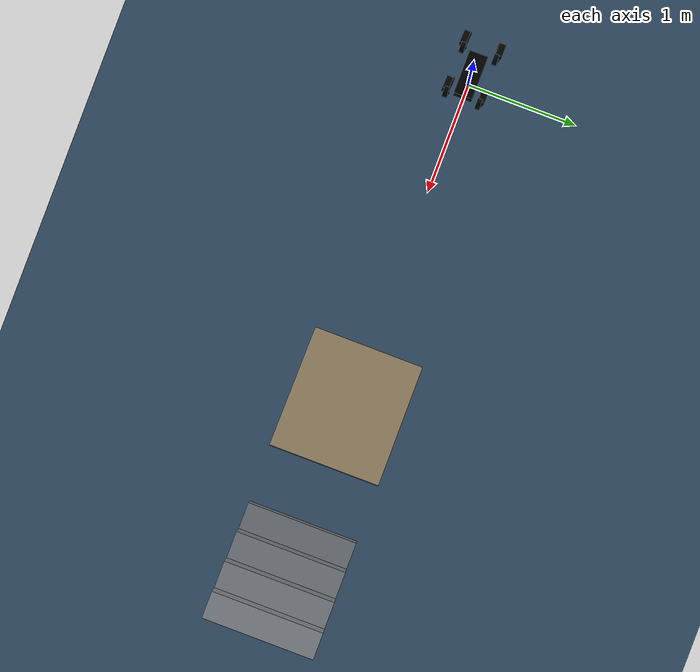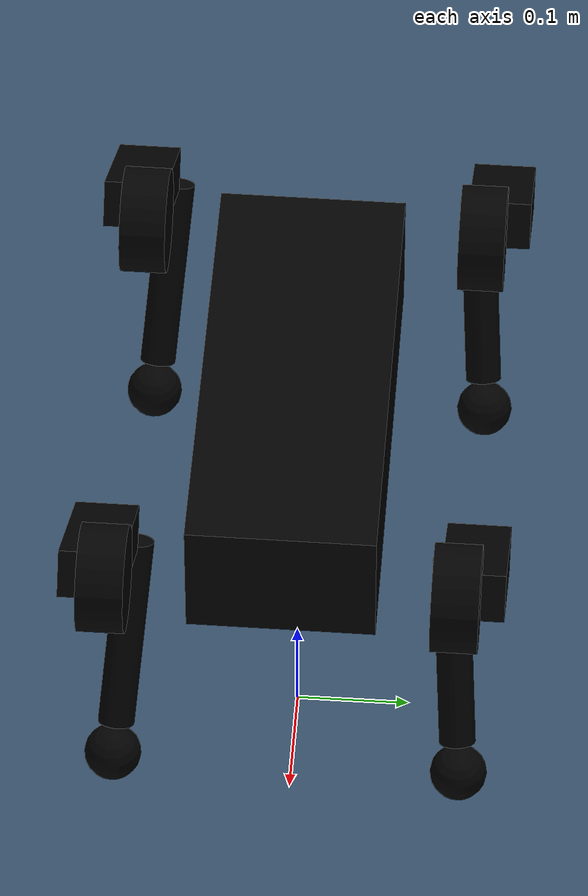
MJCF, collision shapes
<mujoco model="dog_v2_2_4">
  <compiler angle="radian" autolimits="true" eulerseq="zyx" meshdir="meshes" />
  <option gravity="0 0 -9.81">
    <flag frictionloss="enable" />
  </option>
  <size njmax="500" nconmax="100" />
  <default>
    <joint limited="true" />
    <motor ctrllimited="true" />
    <geom condim="1" contype="1" conaffinity="0" friction="0.6 0.2 0.2" />
    <default class="leg_joint_param">
      <joint damping="0.5" frictionloss="0.01" armature="0.01" />
    </default>
    <default class="foot_collision">
      <geom type="sphere" size="0.02" condim="6" friction="10.0 0.05 0.01" />
    </default>
  </default>
  <asset>
    <hfield name="terrain" nrow="100" ncol="100" size="50 50 0.5 0.1" />
    <mesh name="base_link" file="base_link.STL" />
    <mesh name="LF_HipA_link" file="LF_HipA_link.STL" />
    <mesh name="LF_HipF_link" file="LF_HipF_link.STL" />
    <mesh name="LF_Knee_link" file="LF_Knee_link.STL" />
    <mesh name="LF_Foot_link" file="LF_Foot_link.STL" />
    <mesh name="RF_HipA_link" file="RF_HipA_link.STL" />
    <mesh name="RF_HipF_link" file="RF_HipF_link.STL" />
    <mesh name="RF_Knee_link" file="RF_Knee_link.STL" />
    <mesh name="RF_Foot_link" file="RF_Foot_link.STL" />
    <mesh name="LR_HipA_link" file="LR_HipA_link.STL" />
    <mesh name="LR_HipF_link" file="LR_HipF_link.STL" />
    <mesh name="LR_Knee_link" file="LR_Knee_link.STL" />
    <mesh name="LR_Foot_link" file="LR_Foot_link.STL" />
    <mesh name="RR_HipA_link" file="RR_HipA_link.STL" />
    <mesh name="RR_HipF_link" file="RR_HipF_link.STL" />
    <mesh name="RR_Knee_link" file="RR_Knee_link.STL" />
    <mesh name="RR_Foot_link" file="RR_Foot_link.STL" />
  </asset>
  <worldbody>
    <light directional="true" diffuse=".4 .4 .4" pos="0 0 5.0" dir="0 0 -1" />
    <geom name="floor" type="plane" size="50 50 0.1" condim="3" friction="1.0 0.2 0.2" conaffinity="1" rgba="0.2 0.3 0.4 1" />
    <geom name="test_ramp" type="box" pos="3.00 0 0.09" size="0.55 0.5 0.035" quat="0.996195 0 -0.087156 0" condim="3" friction="1.0 0.2 0.2" contype="1" conaffinity="1" rgba="0.55 0.48 0.36 1" />
    <geom name="test_step_1" type="box" pos="4.20 0 0.06" size="0.12 0.5 0.06" condim="3" friction="1.0 0.2 0.2" contype="1" conaffinity="1" rgba="0.42 0.44 0.46 1" />
    <geom name="test_step_2" type="box" pos="4.45 0 0.12" size="0.12 0.5 0.12" condim="3" friction="1.0 0.2 0.2" contype="1" conaffinity="1" rgba="0.44 0.46 0.48 1" />
    <geom name="test_step_3" type="box" pos="4.70 0 0.18" size="0.12 0.5 0.18" condim="3" friction="1.0 0.2 0.2" contype="1" conaffinity="1" rgba="0.46 0.48 0.50 1" />
    <geom name="test_step_4" type="box" pos="4.95 0 0.24" size="0.12 0.5 0.24" condim="3" friction="1.0 0.2 0.2" contype="1" conaffinity="1" rgba="0.48 0.50 0.52 1" />
    <body name="base" pos="0 0 0.35">
      <freejoint name="floating_base" />
      <inertial pos="0.003073 -1.1e-05 0.058211" mass="5.276437" fullinertia="0.032842099924 0.103762167556 0.116538404566 3.336928e-05 -0.007254554244 3.335365e-05" />
      <site name="imu" size="0.01" pos="0 0 0" />
      <geom name="base_visual" type="mesh" mesh="base_link" rgba="0.75294 0.75294 0.75294 1" contype="0" conaffinity="0" group="1" />
      <geom name="base_collision" pos="0.003073 -1.1e-05 0.058211" rgba="0 0 0 0" contype="1" conaffinity="1" group="3" type="box" size="0.19 0.08 0.06" />
      <body name="FL_hip" pos="0.16 0.0674994572689366 0.0630000490222146" quat="0.499999999999998 0.5 0.500000000000002 0.5">
        <inertial pos="0.002621 5.2e-05 0.046852" mass="0.452382" fullinertia="0.00055866874 0.000347032635 0.000308951038 3.41744e-07 -7.08495e-07 -9.1476e-08" />
        <joint name="FL_hip_joint" axis="0 0 1" range="-0.7853982 0.7853982" class="leg_joint_param" />
        <geom name="FL_hip_visual" type="mesh" mesh="LF_HipA_link" rgba="0.752941176470588 0.752941176470588 0.752941176470588 1" contype="0" conaffinity="0" group="1" />
        <geom name="FL_hip_collision" pos="0.08 0 0.04" quat="0.707106781186548 0 0.707106781186547 0" rgba="0 0 0 0" contype="1" conaffinity="1" group="3" type="cylinder" size="0.046 0.02" />
        <body name="FL_thigh" pos="0.018001 0 0.048001" quat="0.707105482511236 0 0.707108079859474 0">
          <inertial pos="0.033261 -0.016881 0.050217" mass="0.779164" fullinertia="0.001597433226 0.003268376129 0.004330433943 0.001505087455 -0.000442930553 0.000224661879" />
          <joint name="FL_thigh_joint" axis="0 0 1" range="-1.2217658 0.8726683" class="leg_joint_param" />
          <geom name="FL_thigh_visual" type="mesh" mesh="LF_HipF_link" rgba="0.752941176470588 0.752941176470588 0.752941176470588 1" contype="0" conaffinity="0" group="1" />
          <geom name="FL_thigh_collision" pos="0.085371716 -0.0611287121 0.075" quat="0.952119252673483 0 0 -0.305726885779592" rgba="0 0 0 0" contype="1" conaffinity="1" group="3" type="box" size="0.07771348385 0.02 0.0275" />
          <body name="FL_calf" pos="0.170743431939306 -0.122257424197791 0.0500000000000068">
            <inertial pos="-0.055107 -0.080197 0.016515" mass="0.121558" fullinertia="0.000549292448 0.000223695708 0.000769619177 -0.000333360171 -1.07893e-07 -1.88213e-07" />
            <joint name="FL_calf_joint" axis="0 0 1" range="-1.2217299 0.69813" class="leg_joint_param" />
            <geom name="FL_calf_visual" type="mesh" mesh="LF_Knee_link" rgba="1 1 1 1" contype="0" conaffinity="0" group="1" />
            <geom name="FL_calf_collision" pos="-0.0528601468 -0.0915564599 0.00792" quat="0.708065575358489 0.657005207653673 -0.176044014814443 -0.189725599106231" rgba="0 0 0 0" contype="1" conaffinity="1" group="3" type="cylinder" size="0.016 0.0861384392" />
            <body name="FL_foot" pos="-0.110125305788291 -0.190742624824423 0.0164999999999972" quat="0 0 0.707106781186549 0.707106781186546">
              <inertial pos="-0.000345 3e-06 -0.001836" mass="0.038528" fullinertia="8.433991e-06 7.946062e-06 8.454215e-06 -4.91e-10 2.2229e-07 -1.475e-09" />
              <geom name="FL_foot_visual" type="mesh" mesh="LF_Foot_link" rgba="0.298039215686275 0.298039215686275 0.298039215686275 1" contype="0" conaffinity="0" group="1" />
              <geom name="FL_foot_collision" rgba="0 0 0 0" contype="1" conaffinity="1" group="3" type="sphere" size="0.025" class="foot_collision" />
              <site name="FL_foot_site" pos="0 0 0" size="0.01" />
            </body>
          </body>
        </body>
      </body>
      <body name="FR_hip" pos="0.16 -0.0674994572689349 0.0629999509777826" quat="0.499999999999998 0.5 0.500000000000002 0.5">
        <inertial pos="-0.002621 -5.2e-05 0.046852" mass="0.452382" fullinertia="0.00055866874 0.000347032635 0.000308951038 3.41744e-07 7.08495e-07 9.1476e-08" />
        <joint name="FR_hip_joint" axis="0 0 1" range="-0.7853982 0.7853982" class="leg_joint_param" />
        <geom name="FR_hip_visual" type="mesh" mesh="RF_HipA_link" rgba="0.752941176470588 0.752941176470588 0.752941176470588 1" contype="0" conaffinity="0" group="1" />
        <geom name="FR_hip_collision" pos="-0.08 0 0.04" quat="0.707106781186548 0 0.707106781186547 0" rgba="0 0 0 0" contype="1" conaffinity="1" group="3" type="cylinder" size="0.046 0.02" />
        <body name="FR_thigh" pos="-0.018001 0 0.048001" quat="0.707105482511236 0 -0.707108079859474 0">
          <inertial pos="-0.033247 -0.016939 0.050217" mass="0.779164" fullinertia="0.001595827327 0.00326915934 0.004329611254 -0.001503634909 0.000443182676 0.000223603548" />
          <joint name="FR_thigh_joint" axis="0 0 1" range="-0.8726999 1.2217342" class="leg_joint_param" />
          <geom name="FR_thigh_visual" type="mesh" mesh="RF_HipF_link" rgba="0.898039215686275 0.917647058823529 0.929411764705882 1" contype="0" conaffinity="0" group="1" />
          <geom name="FR_thigh_collision" pos="-0.08537 -0.06113 0.075" quat="0.305736162781765 0 0 -0.95211627376465" rgba="0 0 0 0" contype="1" conaffinity="1" group="3" type="box" size="0.0777130318 0.02 0.0275" />
          <body name="FR_calf" pos="-0.17074 -0.12226 0.05">
            <inertial pos="0.055107 -0.080197 0.016485" mass="0.121558" fullinertia="0.000549292448 0.000223695708 0.000769619177 0.000333360171 -1.07893e-07 1.88213e-07" />
            <joint name="FR_calf_joint" axis="0 0 1" range="-0.6981312 1.2217287" class="leg_joint_param" />
            <geom name="FR_calf_visual" type="mesh" mesh="RF_Knee_link" rgba="1 1 1 1" contype="0" conaffinity="0" group="1" />
            <geom name="FR_calf_collision" pos="0.0528601468 -0.0915564599 0.00792" quat="0.708065575358489 0.657005207653673 0.176044014814443 0.189725599106231" rgba="0 0 0 0" contype="1" conaffinity="1" group="3" type="cylinder" size="0.016 0.0861384392" />
            <body name="FR_foot" pos="0.110125305788291 -0.190742624824423 0.0165000000000002" quat="0.707106781186546 -0.707106781186549 0 0">
              <inertial pos="-0.000345 3e-06 -0.001836" mass="0.038528" fullinertia="8.433991e-06 7.946062e-06 8.454215e-06 -4.91e-10 2.2229e-07 -1.475e-09" />
              <geom name="FR_foot_visual" type="mesh" mesh="RF_Foot_link" rgba="0.298039215686275 0.298039215686275 0.298039215686275 1" contype="0" conaffinity="0" group="1" />
              <geom name="FR_foot_collision" rgba="0 0 0 0" contype="1" conaffinity="1" group="3" type="sphere" size="0.025" class="foot_collision" />
              <site name="FR_foot_site" pos="0 0 0" size="0.01" />
            </body>
          </body>
        </body>
      </body>
      <body name="RL_hip" pos="-0.16 0.0674994572689466 0.0629999509777641" quat="0.499999999999998 0.5 -0.500000000000002 -0.5">
        <inertial pos="-0.002621 -5.2e-05 0.046852" mass="0.452382" fullinertia="0.00055866874 0.000347032635 0.000308951038 3.41744e-07 7.08495e-07 9.1476e-08" />
        <joint name="RL_hip_joint" axis="0 0 1" range="-0.7853982 0.7853982" class="leg_joint_param" />
        <geom name="RL_hip_visual" type="mesh" mesh="LR_HipA_link" rgba="0.752941176470588 0.752941176470588 0.752941176470588 1" contype="0" conaffinity="0" group="1" />
        <geom name="RL_hip_collision" pos="-0.08 0 0.04" quat="0.707106781186548 0 0.707106781186547 0" rgba="0 0 0 0" contype="1" conaffinity="1" group="3" type="cylinder" size="0.046 0.02" />
        <body name="RL_thigh" pos="-0.018001 0 0.048001" quat="0.707105482511236 0 -0.707108079859474 0">
          <inertial pos="0.03326 -0.016881 0.050217" mass="0.779164" fullinertia="0.001597433226 0.003268376129 0.004330433943 0.001505087455 -0.000442930553 0.000224661879" />
          <joint name="RL_thigh_joint" axis="0 0 1" range="-1.2217305 0.8726683" class="leg_joint_param" />
          <geom name="RL_thigh_visual" type="mesh" mesh="LR_HipF_link" rgba="0.752941176470588 0.752941176470588 0.752941176470588 1" contype="0" conaffinity="0" group="1" />
          <geom name="RL_thigh_collision" pos="0.0853711732 -0.0611286631 0.075" quat="0.952118850702951 0 0 -0.305728137625721" rgba="0 0 0 0" contype="1" conaffinity="1" group="3" type="box" size="0.0777131548 0.02 0.0275" />
          <body name="RL_calf" pos="0.17074234647718 -0.122257326153361 0.050000000000001">
            <inertial pos="-0.055107 -0.080197 0.016515" mass="0.121558" fullinertia="0.000549292448 0.000223695708 0.000769619177 -0.000333360171 -1.07893e-07 -1.88213e-07" />
            <joint name="RL_calf_joint" axis="0 0 1" range="-1.2217299 0.69813" class="leg_joint_param" />
            <geom name="RL_calf_visual" type="mesh" mesh="LR_Knee_link" rgba="1 1 1 1" contype="0" conaffinity="0" group="1" />
            <geom name="RL_calf_collision" pos="-0.0528601468 -0.0915564599 0.00792" quat="0.708065575358489 0.657005207653673 -0.176044014814443 -0.189725599106231" rgba="0 0 0 0" contype="1" conaffinity="1" group="3" type="cylinder" size="0.016 0.0861384392" />
            <body name="RL_foot" pos="-0.110125305788291 -0.190742624824423 0.0164999999999997" quat="0 0 -0.707106781186549 -0.707106781186546">
              <inertial pos="-0.000345 3e-06 -0.001836" mass="0.038528" fullinertia="8.433991e-06 7.946062e-06 8.454215e-06 -4.91e-10 2.2229e-07 -1.475e-09" />
              <geom name="RL_foot_visual" type="mesh" mesh="LR_Foot_link" rgba="0.298039215686275 0.298039215686275 0.298039215686275 1" contype="0" conaffinity="0" group="1" />
              <geom name="RL_foot_collision" rgba="0 0 0 0" contype="1" conaffinity="1" group="3" type="sphere" size="0.025" class="foot_collision" />
              <site name="RL_foot_site" pos="0 0 0" size="0.01" />
            </body>
          </body>
        </body>
      </body>
      <body name="RR_hip" pos="-0.16 -0.0674994572689364 0.0630000490222165" quat="0.499999999999998 0.5 -0.500000000000002 -0.5">
        <inertial pos="0.002621 5.2e-05 0.046852" mass="0.452382" fullinertia="0.00055866874 0.000347032635 0.000308951038 3.41744e-07 -7.08495e-07 -9.1476e-08" />
        <joint name="RR_hip_joint" axis="0 0 1" range="-0.7853982 0.7853982" class="leg_joint_param" />
        <geom name="RR_hip_visual" type="mesh" mesh="RR_HipA_link" rgba="1 1 1 1" contype="0" conaffinity="0" group="1" />
        <geom name="RR_hip_collision" pos="0.08 0 0.04" quat="0.707106781186548 0 0.707106781186547 0" rgba="0 0 0 0" contype="1" conaffinity="1" group="3" type="cylinder" size="0.046 0.02" />
        <body name="RR_thigh" pos="0.018001 0 0.048001" quat="0.707105482511236 0 0.707108079859474 0">
          <inertial pos="-0.033246 -0.01694 0.050217" mass="0.779164" fullinertia="0.001595827327 0.00326915934 0.004329611254 -0.001503634909 0.000443182676 0.000223603548" />
          <joint name="RR_thigh_joint" axis="0 0 1" range="-0.8726999 1.2217305" class="leg_joint_param" />
          <geom name="RR_thigh_visual" type="mesh" mesh="RR_HipF_link" rgba="0.752941176470588 0.752941176470588 0.752941176470588 1" contype="0" conaffinity="0" group="1" />
          <geom name="RR_thigh_collision" pos="-0.0853711732 -0.0611287121 0.075" quat="0.305728318333014 0 0 -0.952118792677294" rgba="0 0 0 0" contype="1" conaffinity="1" group="3" type="box" size="0.0777131748 0.02 0.0275" />
          <body name="RR_calf" pos="-0.170742346477182 -0.122257424197793 0.050000000000007">
            <inertial pos="0.055107 -0.080197 0.016485" mass="0.121558" fullinertia="0.000549292448 0.000223695708 0.000769619177 0.000333360171 -1.07893e-07 1.88213e-07" />
            <joint name="RR_calf_joint" axis="0 0 1" range="-0.6981312 1.2217287" class="leg_joint_param" />
            <geom name="RR_calf_visual" type="mesh" mesh="RR_Knee_link" rgba="1 1 1 1" contype="0" conaffinity="0" group="1" />
            <geom name="RR_calf_collision" pos="0.0528624 -0.0915552 0.00792" quat="0.708063250852277 0.657003067310365 0.176052038033464 0.189734241088796" rgba="0 0 0 0" contype="1" conaffinity="1" group="3" type="cylinder" size="0.016 0.086138468" />
            <body name="RR_foot" pos="0.11013 -0.19074 0.0165" quat="0.707105482511236 -0.707108079859474 0 0">
              <inertial pos="-0.000345 3e-06 -0.001836" mass="0.038528" fullinertia="8.433991e-06 7.946062e-06 8.454215e-06 -4.91e-10 2.2229e-07 -1.475e-09" />
              <geom name="RR_foot_visual" type="mesh" mesh="RR_Foot_link" rgba="0.29804 0.29804 0.29804 1" contype="0" conaffinity="0" group="1" />
              <geom name="RR_foot_collision" rgba="0 0 0 0" contype="1" conaffinity="1" group="3" type="sphere" size="0.025" class="foot_collision" />
              <site name="RR_foot_site" pos="0 0 0" size="0.01" />
            </body>
          </body>
        </body>
      </body>
    </body>
  </worldbody>
  <actuator>
    <motor name="FL_hip" joint="FL_hip_joint" gear="1" ctrllimited="true" ctrlrange="-17 17" />
    <motor name="FL_thigh" joint="FL_thigh_joint" gear="1" ctrllimited="true" ctrlrange="-17 17" />
    <motor name="FL_calf" joint="FL_calf_joint" gear="1" ctrllimited="true" ctrlrange="-25 25" />
    <motor name="FR_hip" joint="FR_hip_joint" gear="1" ctrllimited="true" ctrlrange="-17 17" />
    <motor name="FR_thigh" joint="FR_thigh_joint" gear="1" ctrllimited="true" ctrlrange="-17 17" />
    <motor name="FR_calf" joint="FR_calf_joint" gear="1" ctrllimited="true" ctrlrange="-25 25" />
    <motor name="RL_hip" joint="RL_hip_joint" gear="1" ctrllimited="true" ctrlrange="-17 17" />
    <motor name="RL_thigh" joint="RL_thigh_joint" gear="1" ctrllimited="true" ctrlrange="-17 17" />
    <motor name="RL_calf" joint="RL_calf_joint" gear="1" ctrllimited="true" ctrlrange="-25 25" />
    <motor name="RR_hip" joint="RR_hip_joint" gear="1" ctrllimited="true" ctrlrange="-17 17" />
    <motor name="RR_thigh" joint="RR_thigh_joint" gear="1" ctrllimited="true" ctrlrange="-17 17" />
    <motor name="RR_calf" joint="RR_calf_joint" gear="1" ctrllimited="true" ctrlrange="-25 25" />
  </actuator>
  <sensor>
    <jointpos name="FL_hip_joint_pos" joint="FL_hip_joint" />
    <jointpos name="FL_thigh_joint_pos" joint="FL_thigh_joint" />
    <jointpos name="FL_calf_joint_pos" joint="FL_calf_joint" />
    <jointpos name="FR_hip_joint_pos" joint="FR_hip_joint" />
    <jointpos name="FR_thigh_joint_pos" joint="FR_thigh_joint" />
    <jointpos name="FR_calf_joint_pos" joint="FR_calf_joint" />
    <jointpos name="RL_hip_joint_pos" joint="RL_hip_joint" />
    <jointpos name="RL_thigh_joint_pos" joint="RL_thigh_joint" />
    <jointpos name="RL_calf_joint_pos" joint="RL_calf_joint" />
    <jointpos name="RR_hip_joint_pos" joint="RR_hip_joint" />
    <jointpos name="RR_thigh_joint_pos" joint="RR_thigh_joint" />
    <jointpos name="RR_calf_joint_pos" joint="RR_calf_joint" />
    <jointvel name="FL_hip_joint_vel" joint="FL_hip_joint" />
    <jointvel name="FL_thigh_joint_vel" joint="FL_thigh_joint" />
    <jointvel name="FL_calf_joint_vel" joint="FL_calf_joint" />
    <jointvel name="FR_hip_joint_vel" joint="FR_hip_joint" />
    <jointvel name="FR_thigh_joint_vel" joint="FR_thigh_joint" />
    <jointvel name="FR_calf_joint_vel" joint="FR_calf_joint" />
    <jointvel name="RL_hip_joint_vel" joint="RL_hip_joint" />
    <jointvel name="RL_thigh_joint_vel" joint="RL_thigh_joint" />
    <jointvel name="RL_calf_joint_vel" joint="RL_calf_joint" />
    <jointvel name="RR_hip_joint_vel" joint="RR_hip_joint" />
    <jointvel name="RR_thigh_joint_vel" joint="RR_thigh_joint" />
    <jointvel name="RR_calf_joint_vel" joint="RR_calf_joint" />
    <jointactuatorfrc name="FL_hip_joint_torque" joint="FL_hip_joint" />
    <jointactuatorfrc name="FL_thigh_joint_torque" joint="FL_thigh_joint" />
    <jointactuatorfrc name="FL_calf_joint_torque" joint="FL_calf_joint" />
    <jointactuatorfrc name="FR_hip_joint_torque" joint="FR_hip_joint" />
    <jointactuatorfrc name="FR_thigh_joint_torque" joint="FR_thigh_joint" />
    <jointactuatorfrc name="FR_calf_joint_torque" joint="FR_calf_joint" />
    <jointactuatorfrc name="RL_hip_joint_torque" joint="RL_hip_joint" />
    <jointactuatorfrc name="RL_thigh_joint_torque" joint="RL_thigh_joint" />
    <jointactuatorfrc name="RL_calf_joint_torque" joint="RL_calf_joint" />
    <jointactuatorfrc name="RR_hip_joint_torque" joint="RR_hip_joint" />
    <jointactuatorfrc name="RR_thigh_joint_torque" joint="RR_thigh_joint" />
    <jointactuatorfrc name="RR_calf_joint_torque" joint="RR_calf_joint" />
    <framequat name="orientation" objtype="site" objname="imu" />
    <gyro name="angular-velocity" site="imu" />
    <accelerometer name="linear-acceleration" site="imu" />
    <framepos name="position" objtype="site" objname="imu" />
  </sensor>
</mujoco>
